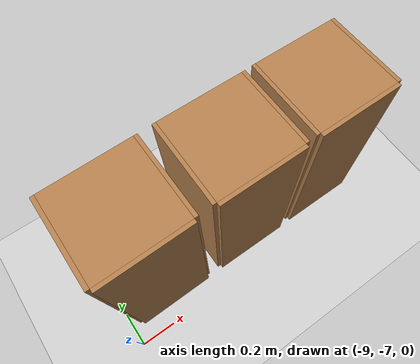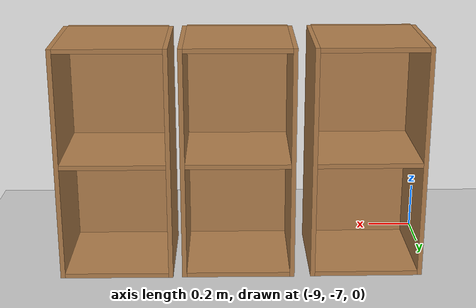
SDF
<sdf version="1.6">
 <world name="default">
  <model name="ground_plane">
   <static>1</static>
   <link name="link">
    <collision name="collision">
     <geometry><plane><normal>0 0 1</normal><size>100 100</size></plane></geometry>
     <surface><friction><ode><mu>100</mu><mu2>50</mu2></ode></friction></surface>
    </collision>
    <visual name="visual">
     <cast_shadows>0</cast_shadows>
     <geometry><plane><normal>0 0 1</normal><size>100 100</size></plane></geometry>
     <material>
      <script><uri>file://media/materials/scripts/gazebo.material</uri><name>Gazebo/Grey</name></script>
     </material>
    </visual>
   </link>
  </model>
  <model name="cabinet">
   <static>1</static>
   <link name="cabinet_bottom_plate">
    <inertial>
     <pose>0 0 -1 0 -0 0</pose>
     <inertia><ixx>2.05</ixx><ixy>0</ixy><ixz>0</ixz><iyy>2.05</iyy><iyz>0</iyz><izz>2.05</izz></inertia>
     <mass>25</mass>
    </inertial>
    <collision name="cabinet_bottom_plate_geom">
     <pose>0 0 0.01 0 -0 0</pose>
     <geometry><box><size>0.45 0.45 0.02</size></box></geometry>
    </collision>
    <visual name="cabinet_bottom_plate_geom_visual">
     <pose>0 0 0.01 0 -0 0</pose>
     <geometry><box><size>0.45 0.45 0.02</size></box></geometry>
     <material>
      <script><uri>file://media/materials/scripts/gazebo.material</uri><name>Gazebo/Wood</name></script>
     </material>
    </visual>
    <collision name="cabinet_bottom_plate_geom_cabinet_back_plate">
     <pose>0.235 0 0.51 0 -0 0</pose>
     <geometry><box><size>0.02 0.45 1.02</size></box></geometry>
    </collision>
    <visual name="cabinet_bottom_plate_geom_cabinet_back_plate_visual">
     <pose>0.235 0 0.51 0 -0 0</pose>
     <geometry><box><size>0.02 0.45 1.02</size></box></geometry>
     <material>
      <script><uri>file://media/materials/scripts/gazebo.material</uri><name>Gazebo/Wood</name></script>
     </material>
    </visual>
    <collision name="cabinet_bottom_plate_geom_cabinet_left_plate">
     <pose>0 0.235 0.51 0 -0 0</pose>
     <geometry><box><size>0.45 0.02 1.02</size></box></geometry>
    </collision>
    <visual name="cabinet_bottom_plate_geom_cabinet_left_plate_visual">
     <pose>0 0.235 0.51 0 -0 0</pose>
     <geometry><box><size>0.45 0.02 1.02</size></box></geometry>
     <material>
      <script><uri>file://media/materials/scripts/gazebo.material</uri><name>Gazebo/Wood</name></script>
     </material>
    </visual>
    <collision name="cabinet_bottom_plate_geom_cabinet_middle_plate">
     <pose>0 0 0.51 0 -0 0</pose>
     <geometry><box><size>0.45 0.45 0.02</size></box></geometry>
    </collision>
    <visual name="cabinet_bottom_plate_geom_cabinet_middle_plate_visual">
     <pose>0 0 0.51 0 -0 0</pose>
     <geometry><box><size>0.45 0.45 0.02</size></box></geometry>
     <material>
      <script><uri>file://media/materials/scripts/gazebo.material</uri><name>Gazebo/Wood</name></script>
     </material>
    </visual>
    <collision name="cabinet_bottom_plate_geom_cabinet_right_plate">
     <pose>0 -0.235 0.51 0 -0 0</pose>
     <geometry><box><size>0.45 0.02 1.02</size></box></geometry>
    </collision>
    <visual name="cabinet_bottom_plate_geom_cabinet_right_plate_visual">
     <pose>0 -0.235 0.51 0 -0 0</pose>
     <geometry><box><size>0.45 0.02 1.02</size></box></geometry>
     <material>
      <script><uri>file://media/materials/scripts/gazebo.material</uri><name>Gazebo/Wood</name></script>
     </material>
    </visual>
    <collision name="cabinet_bottom_plate_geom_cabinet_top_plate">
     <pose>0 0 1.01 0 -0 0</pose>
     <geometry><box><size>0.45 0.45 0.02</size></box></geometry>
    </collision>
    <visual name="cabinet_bottom_plate_geom_cabinet_top_plate_visual">
     <pose>0 0 1.01 0 -0 0</pose>
     <geometry><box><size>0.45 0.45 0.02</size></box></geometry>
     <material>
      <script><uri>file://media/materials/scripts/gazebo.material</uri><name>Gazebo/Wood</name></script>
     </material>
    </visual>
   </link>
   <pose>-8.7127 -6.65706 0 0 0 -1.5536</pose>
  </model>
  <model name="cabinet_clone">
   <static>1</static>
   <link name="cabinet_bottom_plate">
    <inertial>
     <pose>0 0 -1 0 -0 0</pose>
     <inertia><ixx>2.05</ixx><ixy>0</ixy><ixz>0</ixz><iyy>2.05</iyy><iyz>0</iyz><izz>2.05</izz></inertia>
     <mass>25</mass>
    </inertial>
    <collision name="cabinet_bottom_plate_geom">
     <pose>0 0 0.01 0 -0 0</pose>
     <geometry><box><size>0.45 0.45 0.02</size></box></geometry>
    </collision>
    <visual name="cabinet_bottom_plate_geom_visual">
     <pose>0 0 0.01 0 -0 0</pose>
     <geometry><box><size>0.45 0.45 0.02</size></box></geometry>
     <material>
      <script><uri>file://media/materials/scripts/gazebo.material</uri><name>Gazebo/Wood</name></script>
     </material>
    </visual>
    <collision name="cabinet_bottom_plate_geom_cabinet_back_plate">
     <pose>0.235 0 0.51 0 -0 0</pose>
     <geometry><box><size>0.02 0.45 1.02</size></box></geometry>
    </collision>
    <visual name="cabinet_bottom_plate_geom_cabinet_back_plate_visual">
     <pose>0.235 0 0.51 0 -0 0</pose>
     <geometry><box><size>0.02 0.45 1.02</size></box></geometry>
     <material>
      <script><uri>file://media/materials/scripts/gazebo.material</uri><name>Gazebo/Wood</name></script>
     </material>
    </visual>
    <collision name="cabinet_bottom_plate_geom_cabinet_left_plate">
     <pose>0 0.235 0.51 0 -0 0</pose>
     <geometry><box><size>0.45 0.02 1.02</size></box></geometry>
    </collision>
    <visual name="cabinet_bottom_plate_geom_cabinet_left_plate_visual">
     <pose>0 0.235 0.51 0 -0 0</pose>
     <geometry><box><size>0.45 0.02 1.02</size></box></geometry>
     <material>
      <script><uri>file://media/materials/scripts/gazebo.material</uri><name>Gazebo/Wood</name></script>
     </material>
    </visual>
    <collision name="cabinet_bottom_plate_geom_cabinet_middle_plate">
     <pose>0 0 0.51 0 -0 0</pose>
     <geometry><box><size>0.45 0.45 0.02</size></box></geometry>
    </collision>
    <visual name="cabinet_bottom_plate_geom_cabinet_middle_plate_visual">
     <pose>0 0 0.51 0 -0 0</pose>
     <geometry><box><size>0.45 0.45 0.02</size></box></geometry>
     <material>
      <script><uri>file://media/materials/scripts/gazebo.material</uri><name>Gazebo/Wood</name></script>
     </material>
    </visual>
    <collision name="cabinet_bottom_plate_geom_cabinet_right_plate">
     <pose>0 -0.235 0.51 0 -0 0</pose>
     <geometry><box><size>0.45 0.02 1.02</size></box></geometry>
    </collision>
    <visual name="cabinet_bottom_plate_geom_cabinet_right_plate_visual">
     <pose>0 -0.235 0.51 0 -0 0</pose>
     <geometry><box><size>0.45 0.02 1.02</size></box></geometry>
     <material>
      <script><uri>file://media/materials/scripts/gazebo.material</uri><name>Gazebo/Wood</name></script>
     </material>
    </visual>
    <collision name="cabinet_bottom_plate_geom_cabinet_top_plate">
     <pose>0 0 1.01 0 -0 0</pose>
     <geometry><box><size>0.45 0.45 0.02</size></box></geometry>
    </collision>
    <visual name="cabinet_bottom_plate_geom_cabinet_top_plate_visual">
     <pose>0 0 1.01 0 -0 0</pose>
     <geometry><box><size>0.45 0.45 0.02</size></box></geometry>
     <material>
      <script><uri>file://media/materials/scripts/gazebo.material</uri><name>Gazebo/Wood</name></script>
     </material>
    </visual>
   </link>
   <pose>-8.15497 -6.64772 0 0 0 -1.56401</pose>
  </model>
  <model name="cabinet_clone_0">
   <static>1</static>
   <link name="cabinet_bottom_plate">
    <inertial>
     <pose>0 0 -1 0 -0 0</pose>
     <inertia><ixx>2.05</ixx><ixy>0</ixy><ixz>0</ixz><iyy>2.05</iyy><iyz>0</iyz><izz>2.05</izz></inertia>
     <mass>25</mass>
    </inertial>
    <collision name="cabinet_bottom_plate_geom">
     <pose>0 0 0.01 0 -0 0</pose>
     <geometry><box><size>0.45 0.45 0.02</size></box></geometry>
    </collision>
    <visual name="cabinet_bottom_plate_geom_visual">
     <pose>0 0 0.01 0 -0 0</pose>
     <geometry><box><size>0.45 0.45 0.02</size></box></geometry>
     <material>
      <script><uri>file://media/materials/scripts/gazebo.material</uri><name>Gazebo/Wood</name></script>
     </material>
    </visual>
    <collision name="cabinet_bottom_plate_geom_cabinet_back_plate">
     <pose>0.235 0 0.51 0 -0 0</pose>
     <geometry><box><size>0.02 0.45 1.02</size></box></geometry>
    </collision>
    <visual name="cabinet_bottom_plate_geom_cabinet_back_plate_visual">
     <pose>0.235 0 0.51 0 -0 0</pose>
     <geometry><box><size>0.02 0.45 1.02</size></box></geometry>
     <material>
      <script><uri>file://media/materials/scripts/gazebo.material</uri><name>Gazebo/Wood</name></script>
     </material>
    </visual>
    <collision name="cabinet_bottom_plate_geom_cabinet_left_plate">
     <pose>0 0.235 0.51 0 -0 0</pose>
     <geometry><box><size>0.45 0.02 1.02</size></box></geometry>
    </collision>
    <visual name="cabinet_bottom_plate_geom_cabinet_left_plate_visual">
     <pose>0 0.235 0.51 0 -0 0</pose>
     <geometry><box><size>0.45 0.02 1.02</size></box></geometry>
     <material>
      <script><uri>file://media/materials/scripts/gazebo.material</uri><name>Gazebo/Wood</name></script>
     </material>
    </visual>
    <collision name="cabinet_bottom_plate_geom_cabinet_middle_plate">
     <pose>0 0 0.51 0 -0 0</pose>
     <geometry><box><size>0.45 0.45 0.02</size></box></geometry>
    </collision>
    <visual name="cabinet_bottom_plate_geom_cabinet_middle_plate_visual">
     <pose>0 0 0.51 0 -0 0</pose>
     <geometry><box><size>0.45 0.45 0.02</size></box></geometry>
     <material>
      <script><uri>file://media/materials/scripts/gazebo.material</uri><name>Gazebo/Wood</name></script>
     </material>
    </visual>
    <collision name="cabinet_bottom_plate_geom_cabinet_right_plate">
     <pose>0 -0.235 0.51 0 -0 0</pose>
     <geometry><box><size>0.45 0.02 1.02</size></box></geometry>
    </collision>
    <visual name="cabinet_bottom_plate_geom_cabinet_right_plate_visual">
     <pose>0 -0.235 0.51 0 -0 0</pose>
     <geometry><box><size>0.45 0.02 1.02</size></box></geometry>
     <material>
      <script><uri>file://media/materials/scripts/gazebo.material</uri><name>Gazebo/Wood</name></script>
     </material>
    </visual>
    <collision name="cabinet_bottom_plate_geom_cabinet_top_plate">
     <pose>0 0 1.01 0 -0 0</pose>
     <geometry><box><size>0.45 0.45 0.02</size></box></geometry>
    </collision>
    <visual name="cabinet_bottom_plate_geom_cabinet_top_plate_visual">
     <pose>0 0 1.01 0 -0 0</pose>
     <geometry><box><size>0.45 0.45 0.02</size></box></geometry>
     <material>
      <script><uri>file://media/materials/scripts/gazebo.material</uri><name>Gazebo/Wood</name></script>
     </material>
    </visual>
   </link>
   <pose>-7.62529 -6.64083 0 0 0 -1.56422</pose>
  </model>
 </world>
</sdf>
